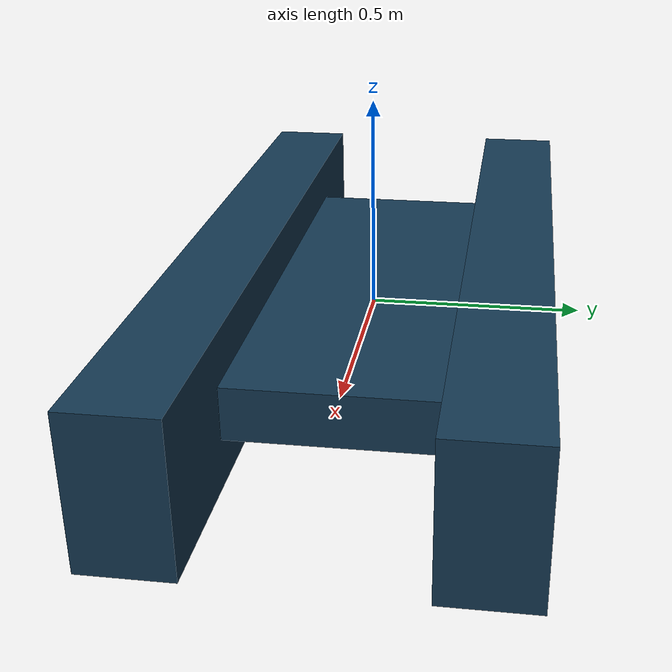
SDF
<?xml version="1.0"?>
<sdf version="1.10">
  <model name="surveyor">

    <!-- Diagnostic-only physical joint chain: free x, y and yaw; locked z,
         roll and pitch. Carriage masses are negligible (1e-6 kg each). -->
    <link name="planar_x_carriage"><inertial><mass>1e-6</mass><inertia><ixx>1e-9</ixx><iyy>1e-9</iyy><izz>1e-9</izz></inertia></inertial></link>
    <link name="planar_y_carriage"><inertial><mass>1e-6</mass><inertia><ixx>1e-9</ixx><iyy>1e-9</iyy><izz>1e-9</izz></inertia></inertial></link>
    <joint name="planar_x" type="prismatic"><parent>world</parent><child>planar_x_carriage</child><axis><xyz expressed_in="__model__">1 0 0</xyz><limit><lower>-1e6</lower><upper>1e6</upper></limit></axis></joint>
    <joint name="planar_y" type="prismatic"><parent>planar_x_carriage</parent><child>planar_y_carriage</child><axis><xyz expressed_in="__model__">0 1 0</xyz><limit><lower>-1e6</lower><upper>1e6</upper></limit></axis></joint>
    <joint name="planar_yaw" type="revolute"><parent>planar_y_carriage</parent><child>base_link</child><axis><xyz expressed_in="__model__">0 0 1</xyz><limit><lower>-1e6</lower><upper>1e6</upper></limit></axis></joint>
    <link name="base_link">
      <inertial><pose>0.007543520309477757 0 0 0 0 0</pose><mass>51.699999999999996</mass><inertia><ixx>5.309042500000001</ixx><iyy>13.090471693745972</iyy><izz>17.569042860412644</izz><ixy>0</ixy><ixz>0</ixz><iyz>0</iyz></inertia></inertial>
      <collision name="port_pontoon_collision"><pose>0 -0.33 0 0 0 0</pose><geometry><box><size>1.83 0.2 0.34</size></box></geometry><surface><contact><collide_bitmask>65535</collide_bitmask></contact></surface></collision>
      <visual name="port_pontoon_visual"><pose>0 -0.33 0 0 0 0</pose><geometry><box><size>1.83 0.2 0.34</size></box></geometry><material><diffuse>0.08 0.22 0.32 1</diffuse></material></visual>
      <collision name="starboard_pontoon_collision"><pose>0 0.33 0 0 0 0</pose><geometry><box><size>1.83 0.2 0.34</size></box></geometry><surface><contact><collide_bitmask>65535</collide_bitmask></contact></surface></collision>
      <visual name="starboard_pontoon_visual"><pose>0 0.33 0 0 0 0</pose><geometry><box><size>1.83 0.2 0.34</size></box></geometry><material><diffuse>0.08 0.22 0.32 1</diffuse></material></visual>
      <collision name="deck_payload_and_superstructure_collision"><pose>0 0 0 0 0 0</pose><geometry><box><size>1.2 0.55 0.12</size></box></geometry><surface><contact><collide_bitmask>65535</collide_bitmask></contact></surface></collision>
      <visual name="deck_payload_and_superstructure_visual"><pose>0 0 0 0 0 0</pose><geometry><box><size>1.2 0.55 0.12</size></box></geometry><material><diffuse>0.08 0.22 0.32 1</diffuse></material></visual>
      <sensor name="port_hull_contact" type="contact"><always_on>true</always_on><update_rate>20</update_rate><contact><collision>port_pontoon_collision</collision><topic>/surveyor/contacts/hull_0</topic></contact></sensor>
      <sensor name="starboard_hull_contact" type="contact"><always_on>true</always_on><update_rate>20</update_rate><contact><collision>starboard_pontoon_collision</collision><topic>/surveyor/contacts/hull_1</topic></contact></sensor>
      <sensor name="task_imu" type="imu"><always_on>true</always_on><update_rate>50</update_rate><topic>imu</topic><imu><orientation_reference_frame><localization>ENU</localization></orientation_reference_frame></imu></sensor>
      <sensor name="task_gps" type="navsat"><always_on>true</always_on><update_rate>2</update_rate><topic>gps</topic></sensor>
    </link>
    <plugin filename="libSurface.so" name="vrx::Surface"><link_name>base_link</link_name><hull_length>1.83</hull_length><hull_radius>0.17</hull_radius><fluid_level>0</fluid_level><fluid_density>1025</fluid_density><points><point>0.4575 -0.33 0</point><point>-0.4575 -0.33 0</point></points><wavefield><topic>/vrx/wavefield/parameters</topic></wavefield></plugin>
    <plugin filename="libSurface.so" name="vrx::Surface"><link_name>base_link</link_name><hull_length>1.83</hull_length><hull_radius>0.17</hull_radius><fluid_level>0</fluid_level><fluid_density>1025</fluid_density><points><point>0.4575 0.33 0</point><point>-0.4575 0.33 0</point></points><wavefield><topic>/vrx/wavefield/parameters</topic></wavefield></plugin>
    <plugin filename="libSimpleHydrodynamics.so" name="vrx::SimpleHydrodynamics"><link_name>base_link</link_name><xDotU>0</xDotU><yDotV>0</yDotV><nDotR>0</nDotR><xU>6</xU><xUU>18</xUU><yV>18</yV><yVV>60</yVV><zW>0</zW><kP>0</kP><mQ>0</mQ><nR>8</nR><nRR>12</nRR></plugin>
    <link name="port_propeller"><pose relative_to="base_link">-0.65 0.33 0 0 0 0</pose><inertial><mass>0.3</mass><inertia><ixx>0.000375</ixx><iyy>0.0001975</iyy><izz>0.0001975</izz><ixy>0</ixy><ixz>0</ixz><iyz>0</iyz></inertia></inertial></link>
    <joint name="port_propeller_joint" type="revolute"><parent>base_link</parent><child>port_propeller</child><axis><xyz>1 0 0</xyz><dynamics><damping>0.010132118364233778</damping></dynamics></axis></joint>
    <plugin filename="gz-sim-thruster-system" name="gz::sim::systems::Thruster"><joint_name>port_propeller_joint</joint_name><thrust_coefficient>0.006919495468257212</thrust_coefficient><fluid_density>1025</fluid_density><propeller_diameter>0.1</propeller_diameter><velocity_control>true</velocity_control><min_thrust_cmd>-70</min_thrust_cmd><max_thrust_cmd>70</max_thrust_cmd><namespace>surveyor</namespace><topic>thrusters/port/thrust</topic></plugin>
    <link name="starboard_propeller"><pose relative_to="base_link">-0.65 -0.33 0 0 0 0</pose><inertial><mass>0.3</mass><inertia><ixx>0.000375</ixx><iyy>0.0001975</iyy><izz>0.0001975</izz><ixy>0</ixy><ixz>0</ixz><iyz>0</iyz></inertia></inertial></link>
    <joint name="starboard_propeller_joint" type="revolute"><parent>base_link</parent><child>starboard_propeller</child><axis><xyz>1 0 0</xyz><dynamics><damping>0.010132118364233778</damping></dynamics></axis></joint>
    <plugin filename="gz-sim-thruster-system" name="gz::sim::systems::Thruster"><joint_name>starboard_propeller_joint</joint_name><thrust_coefficient>0.006919495468257212</thrust_coefficient><fluid_density>1025</fluid_density><propeller_diameter>0.1</propeller_diameter><velocity_control>true</velocity_control><min_thrust_cmd>-70</min_thrust_cmd><max_thrust_cmd>70</max_thrust_cmd><namespace>surveyor</namespace><topic>thrusters/starboard/thrust</topic></plugin>
    <plugin filename="gz-sim-pose-publisher-system" name="gz::sim::systems::PosePublisher"><publish_model_pose>true</publish_model_pose><publish_link_pose>true</publish_link_pose><use_pose_vector_msg>true</use_pose_vector_msg><static_publisher>false</static_publisher></plugin>
    <plugin filename="gz-sim-odometry-publisher-system" name="gz::sim::systems::OdometryPublisher"><odom_publish_frequency>20</odom_publish_frequency><odom_topic>odometry</odom_topic><dimensions>3</dimensions></plugin>
  <plugin filename="libVrxCurrentRelativeVelocity.so" name="vrx_surveyor::CurrentRelativeVelocity"><link_name>base_link</link_name><current_enu>0 0 0</current_enu><xU>6</xU><xUU>18</xUU><yV>18</yV><yVV>60</yVV><xDotU>-2.615</xDotU><yDotV>-39.224999999999994</yDotV><diagnostic_output>/episode/velocity-telemetry.csv</diagnostic_output><diagnostic_drive_body_force>-37.88 -24.29 0</diagnostic_drive_body_force><diagnostic_drive_duration_s>1.5</diagnostic_drive_duration_s></plugin><plugin filename="libVrxSurveyorRelativeWind.so" name="vrx_surveyor::SurveyorRelativeWind"><link_name>base_link</link_name><wind_enu>0 0 0</wind_enu><air_density>1.225</air_density><frontal_area>0.3822</frontal_area><side_area>0.7686</side_area><drag_coefficient>1.1</drag_coefficient></plugin></model>
</sdf>
